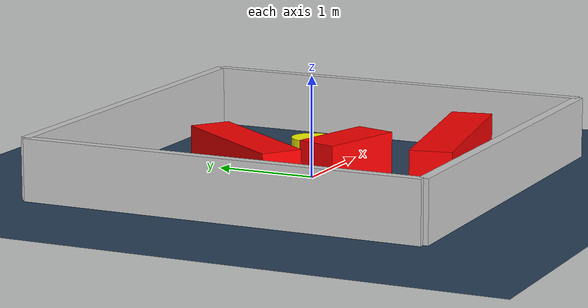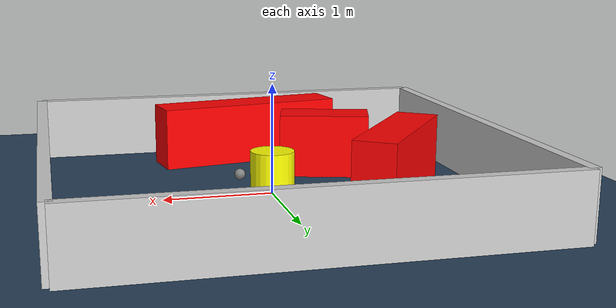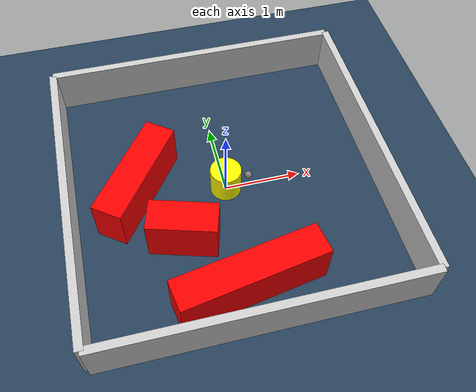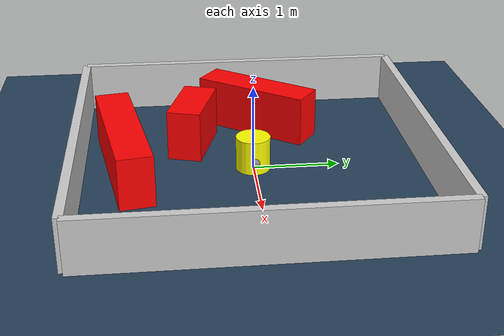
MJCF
<?xml version="1.0" ?>
<mujoco model="generated_environment">
  <option timestep="0.01" integrator="RK4" cone="elliptic"/>
  <default>
    <geom density="1"/>
  </default>
  <asset>
    <texture builtin="gradient" height="3072" rgb1="0.3 0.5 0.7" rgb2="0 0 0" type="skybox" width="512"/>
    <texture builtin="checker" height="300" mark="edge" markrgb="0.8 0.8 0.8" name="groundplane" rgb1="0.2 0.3 0.4" rgb2="0.1 0.2 0.3" type="2d" width="300"/>
    <material name="groundplane" reflectance="0.2" texrepeat="5 5" texture="groundplane" texuniform="true"/>
    <material name="robot" rgba="0.0 1.0 0.0 1"/>
  </asset>
  <worldbody>
    <light dir="0 0 -1" directional="true" pos="0 0 1.5"/>
    <geom condim="4" friction="1.0 0.005 0.001" material="groundplane" name="floor" size="0 0 0.05" type="plane"/>
    <body name="walls">
      <geom name="wall_1" condim="4" pos="-2.0 0.0 0.3" rgba="0.800000011920929 0.800000011920929 0.800000011920929 1.0" size="0.05 2.0 0.3" type="box"/>
      <geom name="wall_2" condim="4" pos="2.0 0.0 0.3" rgba="0.800000011920929 0.800000011920929 0.800000011920929 1.0" size="0.05 2.0 0.3" type="box"/>
      <geom name="wall_3" condim="4" pos="0.0 -2.0 0.3" rgba="0.800000011920929 0.800000011920929 0.800000011920929 1.0" size="2.0 0.05 0.3" type="box"/>
      <geom name="wall_4" condim="4" pos="0.0 2.0 0.3" rgba="0.800000011920929 0.800000011920929 0.800000011920929 1.0" size="2.0 0.05 0.3" type="box"/>
    </body>
    <body name="robot">
      <joint name="joint_x" type="slide" pos="0 0 0" axis="1 0 0"/>
      <joint name="joint_y" type="slide" pos="0 0 0" axis="0 1 0"/>
      <geom name="robot" type="sphere" pos="0.3 0.0 0.2" size="0.05" mass="5." friction="1.0 0.005 0.0001" condim="4" rgba="0.5 0.5 0.5 1.0"/>
      <site name="sensor_ball"/>
    </body>
    <body name="obstacle_movable_1">
      <geom name="obstacle_movable_1" condim="4" pos="0.0 0.0 0.2" euler="0 0 0.0" friction="1.0 0.005 0.001" rgba="1.0 1.0 0.0 1.0" size="0.2 0.2 0.0" type="cylinder" mass="0.1"/>
      <joint type="free"/>
    </body>
    <body name="obstacle_2_static">
      <geom name="obstacle_2_static" condim="4" pos="-1.1247008519328807 0.16192835739721256 0.3" euler="0 0 54.01043746738371" friction="1.0 0.005 0.001" rgba="1 0 0 1" size="0.7252078946211811 0.2 0.3" type="box"/>
    </body>
    <body name="obstacle_3_static">
      <geom name="obstacle_3_static" condim="4" pos="-0.062498439966209185 -1.4791532739273987 0.3" euler="0 0 9.907792362469593" friction="1.0 0.005 0.001" rgba="1 0 0 1" size="0.9173528204948025 0.2 0.3" type="box"/>
    </body>
    <body name="obstacle_4_static">
      <geom name="obstacle_4_static" condim="4" pos="-0.6802516241271476 -0.6687273188829763 0.3" euler="0 0 343.5773992144339" friction="1.0 0.005 0.001" rgba="1 0 0 1" size="0.424885984608751 0.2 0.3" type="box"/>
    </body>
  </worldbody>
  <actuator>
    <motor name="actuator_x" joint="joint_x" gear="1" ctrlrange="-1 1"/>
    <motor name="actuator_y" joint="joint_y" gear="1" ctrlrange="-1 1"/>
  </actuator>
</mujoco>
